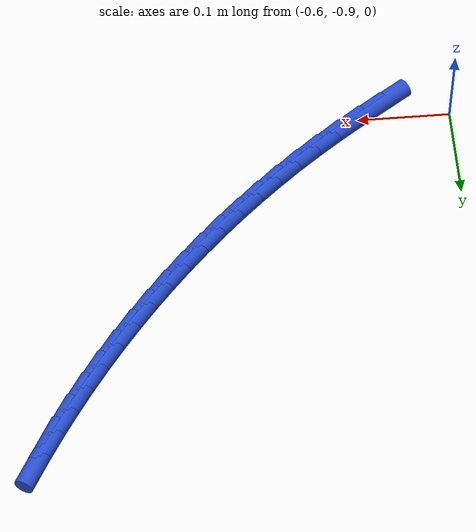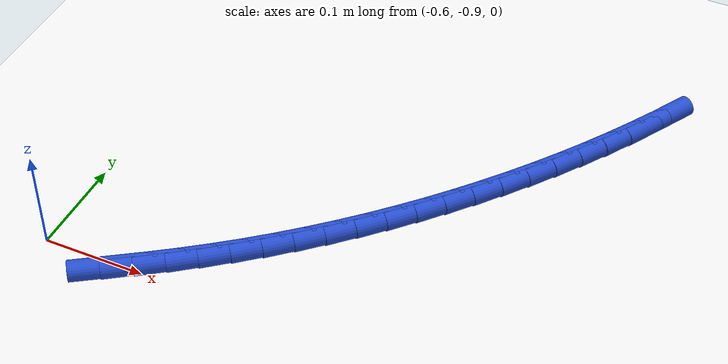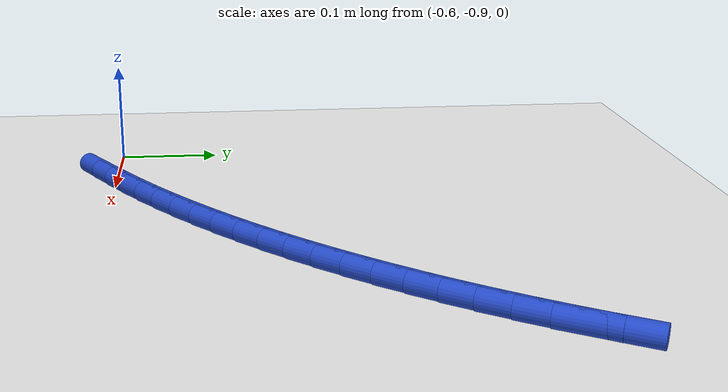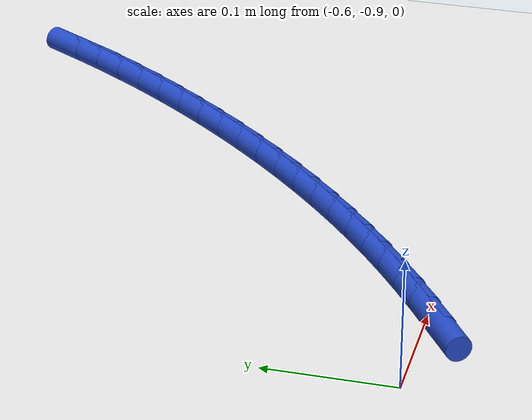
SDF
<sdf version="1.6">
 <world name="default">
  <model name="ground_plane">
   <static>1</static>
   <link name="link">
    <collision name="collision">
     <geometry><plane><normal>0 0 1</normal><size>100 100</size></plane></geometry>
     <surface><friction><ode><mu>100</mu><mu2>50</mu2></ode></friction></surface>
    </collision>
    <visual name="visual">
     <cast_shadows>0</cast_shadows>
     <geometry><plane><normal>0 0 1</normal><size>100 100</size></plane></geometry>
     <material>
      <script><uri>file://media/materials/scripts/gazebo.material</uri><name>Gazebo/WhiteGlow</name></script>
     </material>
    </visual>
   </link>
  </model>
  <model name="line">
   <link name="link_192">
    <pose>-0.5219221786288645 -0.9101765236776953 0.01 0 1.57 0.5805384789359254</pose>
    <collision name="collision">
     <geometry><cylinder><radius>0.01</radius><length>0.08</length></cylinder></geometry>
    </collision>
    <visual name="visual">
     <material>
      <script><name>Gazebo/Blue</name><uri>file://media/materials/scripts/gazebo.material</uri></script>
     </material>
     <geometry><cylinder><radius>0.01</radius><length>0.08</length></cylinder></geometry>
    </visual>
   </link>
   <link name="link_193">
    <pose>-0.4979733276137396 -0.8944675541182682 0.01 0 1.57 0.6014154007032634</pose>
    <collision name="collision">
     <geometry><cylinder><radius>0.01</radius><length>0.08</length></cylinder></geometry>
    </collision>
    <visual name="visual">
     <material>
      <script><name>Gazebo/Blue</name><uri>file://media/materials/scripts/gazebo.material</uri></script>
     </material>
     <geometry><cylinder><radius>0.01</radius><length>0.08</length></cylinder></geometry>
    </visual>
   </link>
   <link name="link_194">
    <pose>-0.4743626455101766 -0.8782655099238105 0.01 0 1.57 0.6252434023023421</pose>
    <collision name="collision">
     <geometry><cylinder><radius>0.01</radius><length>0.08</length></cylinder></geometry>
    </collision>
    <visual name="visual">
     <material>
      <script><name>Gazebo/Blue</name><uri>file://media/materials/scripts/gazebo.material</uri></script>
     </material>
     <geometry><cylinder><radius>0.01</radius><length>0.08</length></cylinder></geometry>
    </visual>
   </link>
   <link name="link_195">
    <pose>-0.4511359636201269 -0.8614992225522204 0.01 0 1.57 0.6514963202673514</pose>
    <collision name="collision">
     <geometry><cylinder><radius>0.01</radius><length>0.08</length></cylinder></geometry>
    </collision>
    <visual name="visual">
     <material>
      <script><name>Gazebo/Blue</name><uri>file://media/materials/scripts/gazebo.material</uri></script>
     </material>
     <geometry><cylinder><radius>0.01</radius><length>0.08</length></cylinder></geometry>
    </visual>
   </link>
   <link name="link_196">
    <pose>-0.42833388240151404 -0.8441110816728503 0.01 0 1.57 0.6779950106610388</pose>
    <collision name="collision">
     <geometry><cylinder><radius>0.01</radius><length>0.08</length></cylinder></geometry>
    </collision>
    <visual name="visual">
     <material>
      <script><name>Gazebo/Blue</name><uri>file://media/materials/scripts/gazebo.material</uri></script>
     </material>
     <geometry><cylinder><radius>0.01</radius><length>0.08</length></cylinder></geometry>
    </visual>
   </link>
   <link name="link_197">
    <pose>-0.40597387102642546 -0.8261034326453471 0.01 0 1.57 0.7041603181239453</pose>
    <collision name="collision">
     <geometry><cylinder><radius>0.01</radius><length>0.08</length></cylinder></geometry>
    </collision>
    <visual name="visual">
     <material>
      <script><name>Gazebo/Blue</name><uri>file://media/materials/scripts/gazebo.material</uri></script>
     </material>
     <geometry><cylinder><radius>0.01</radius><length>0.08</length></cylinder></geometry>
    </visual>
   </link>
   <link name="link_198">
    <pose>-0.3840670068385878 -0.8074951882819643 0.01 0 1.57 0.7300137774613377</pose>
    <collision name="collision">
     <geometry><cylinder><radius>0.01</radius><length>0.08</length></cylinder></geometry>
    </collision>
    <visual name="visual">
     <material>
      <script><name>Gazebo/Blue</name><uri>file://media/materials/scripts/gazebo.material</uri></script>
     </material>
     <geometry><cylinder><radius>0.01</radius><length>0.08</length></cylinder></geometry>
    </visual>
   </link>
   <link name="link_199">
    <pose>-0.36262436696555456 -0.7883052619552652 0.01 0 1.57 0.7555778673065452</pose>
    <collision name="collision">
     <geometry><cylinder><radius>0.01</radius><length>0.08</length></cylinder></geometry>
    </collision>
    <visual name="visual">
     <material>
      <script><name>Gazebo/Blue</name><uri>file://media/materials/scripts/gazebo.material</uri></script>
     </material>
     <geometry><cylinder><radius>0.01</radius><length>0.08</length></cylinder></geometry>
    </visual>
   </link>
   <link name="link_200">
    <pose>-0.3416570285348794 -0.768552567037814 0.01 0 1.57 0.7808758551937242</pose>
    <collision name="collision">
     <geometry><cylinder><radius>0.01</radius><length>0.08</length></cylinder></geometry>
    </collision>
    <visual name="visual">
     <material>
      <script><name>Gazebo/Blue</name><uri>file://media/materials/scripts/gazebo.material</uri></script>
     </material>
     <geometry><cylinder><radius>0.01</radius><length>0.08</length></cylinder></geometry>
    </visual>
   </link>
   <link name="link_201">
    <pose>-0.32117606867411547 -0.7482560169021738 0.01 0 1.57 0.8059316794258566</pose>
    <collision name="collision">
     <geometry><cylinder><radius>0.01</radius><length>0.08</length></cylinder></geometry>
    </collision>
    <visual name="visual">
     <material>
      <script><name>Gazebo/Blue</name><uri>file://media/materials/scripts/gazebo.material</uri></script>
     </material>
     <geometry><cylinder><radius>0.01</radius><length>0.08</length></cylinder></geometry>
    </visual>
   </link>
   <link name="link_202">
    <pose>-0.30119256451081783 -0.7274345249209092 0.01 0 1.57 0.830769846532939</pose>
    <collision name="collision">
     <geometry><cylinder><radius>0.01</radius><length>0.08</length></cylinder></geometry>
    </collision>
    <visual name="visual">
     <material>
      <script><name>Gazebo/Blue</name><uri>file://media/materials/scripts/gazebo.material</uri></script>
     </material>
     <geometry><cylinder><radius>0.01</radius><length>0.08</length></cylinder></geometry>
    </visual>
   </link>
   <link name="link_203">
    <pose>-0.2817175931725398 -0.706107004466584 0.01 0 1.57 0.8554153430667505</pose>
    <collision name="collision">
     <geometry><cylinder><radius>0.01</radius><length>0.08</length></cylinder></geometry>
    </collision>
    <visual name="visual">
     <material>
      <script><name>Gazebo/Blue</name><uri>file://media/materials/scripts/gazebo.material</uri></script>
     </material>
     <geometry><cylinder><radius>0.01</radius><length>0.08</length></cylinder></geometry>
    </visual>
   </link>
   <link name="link_204">
    <pose>-0.2627622317868349 -0.684292368911762 0.01 0 1.57 0.8798935603719757</pose>
    <collision name="collision">
     <geometry><cylinder><radius>0.01</radius><length>0.08</length></cylinder></geometry>
    </collision>
    <visual name="visual">
     <material>
      <script><name>Gazebo/Blue</name><uri>file://media/materials/scripts/gazebo.material</uri></script>
     </material>
     <geometry><cylinder><radius>0.01</radius><length>0.08</length></cylinder></geometry>
    </visual>
   </link>
   <link name="link_205">
    <pose>-0.24433755748125707 -0.6620095316290066 0.01 0 1.57 0.9042302309059158</pose>
    <collision name="collision">
     <geometry><cylinder><radius>0.01</radius><length>0.08</length></cylinder></geometry>
    </collision>
    <visual name="visual">
     <material>
      <script><name>Gazebo/Blue</name><uri>file://media/materials/scripts/gazebo.material</uri></script>
     </material>
     <geometry><cylinder><radius>0.01</radius><length>0.08</length></cylinder></geometry>
    </visual>
   </link>
   <link name="link_206">
    <pose>-0.22645464738335971 -0.6392774059908815 0.01 0 1.57 0.9284513746405644</pose>
    <collision name="collision">
     <geometry><cylinder><radius>0.01</radius><length>0.08</length></cylinder></geometry>
    </collision>
    <visual name="visual">
     <material>
      <script><name>Gazebo/Blue</name><uri>file://media/materials/scripts/gazebo.material</uri></script>
     </material>
     <geometry><cylinder><radius>0.01</radius><length>0.08</length></cylinder></geometry>
    </visual>
   </link>
   <link name="link_207">
    <pose>-0.20912457862069753 -0.6161149053699514 0.01 0 1.57 0.9525832540613779</pose>
    <collision name="collision">
     <geometry><cylinder><radius>0.01</radius><length>0.08</length></cylinder></geometry>
    </collision>
    <visual name="visual">
     <material>
      <script><name>Gazebo/Blue</name><uri>file://media/materials/scripts/gazebo.material</uri></script>
     </material>
     <geometry><cylinder><radius>0.01</radius><length>0.08</length></cylinder></geometry>
    </visual>
   </link>
   <link name="link_208">
    <pose>-0.19235842832082378 -0.5925409431387798 0.01 0 1.57 0.9766523362712478</pose>
    <collision name="collision">
     <geometry><cylinder><radius>0.01</radius><length>0.08</length></cylinder></geometry>
    </collision>
    <visual name="visual">
     <material>
      <script><name>Gazebo/Blue</name><uri>file://media/materials/scripts/gazebo.material</uri></script>
     </material>
     <geometry><cylinder><radius>0.01</radius><length>0.08</length></cylinder></geometry>
    </visual>
   </link>
   <link name="link_209">
    <pose>-0.17616727361129236 -0.5685744326699305 0.01 0 1.57 1.0006852607070411</pose>
    <collision name="collision">
     <geometry><cylinder><radius>0.01</radius><length>0.08</length></cylinder></geometry>
    </collision>
    <visual name="visual">
     <material>
      <script><name>Gazebo/Blue</name><uri>file://media/materials/scripts/gazebo.material</uri></script>
     </material>
     <geometry><cylinder><radius>0.01</radius><length>0.08</length></cylinder></geometry>
    </visual>
   </link>
   <link name="link_210">
    <pose>-0.16056219161965662 -0.5442342873359667 0.01 0 1.57 1.0247088109772886</pose>
    <collision name="collision">
     <geometry><cylinder><radius>0.01</radius><length>0.08</length></cylinder></geometry>
    </collision>
    <visual name="visual">
     <material>
      <script><name>Gazebo/Blue</name><uri>file://media/materials/scripts/gazebo.material</uri></script>
     </material>
     <geometry><cylinder><radius>0.01</radius><length>0.08</length></cylinder></geometry>
    </visual>
   </link>
   <link name="link_211">
    <pose>-0.14555425947348588 -0.5195394205094463 0.01 0 1.57 1.048849216547309</pose>
    <collision name="collision">
     <geometry><cylinder><radius>0.01</radius><length>0.08</length></cylinder></geometry>
    </collision>
    <visual name="visual">
     <material>
      <script><name>Gazebo/Blue</name><uri>file://media/materials/scripts/gazebo.material</uri></script>
     </material>
     <geometry><cylinder><radius>0.01</radius><length>0.08</length></cylinder></geometry>
    </visual>
   </link>
  </model>
 </world>
</sdf>
